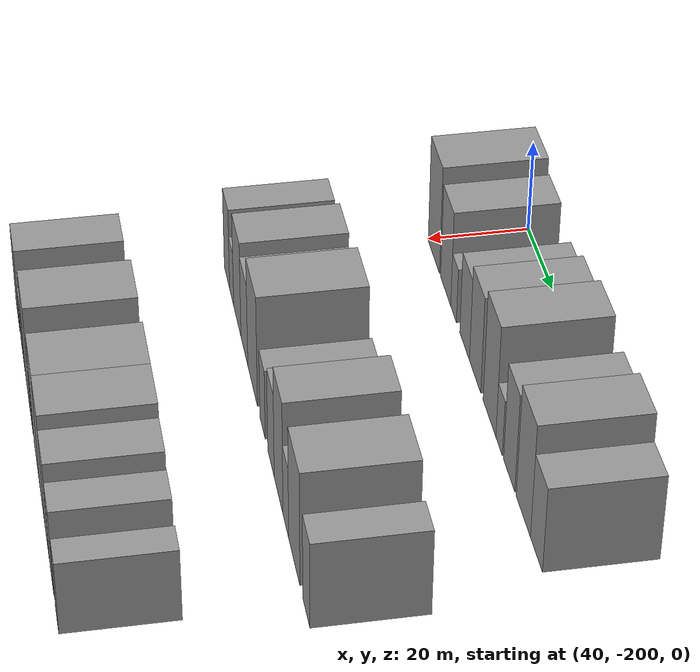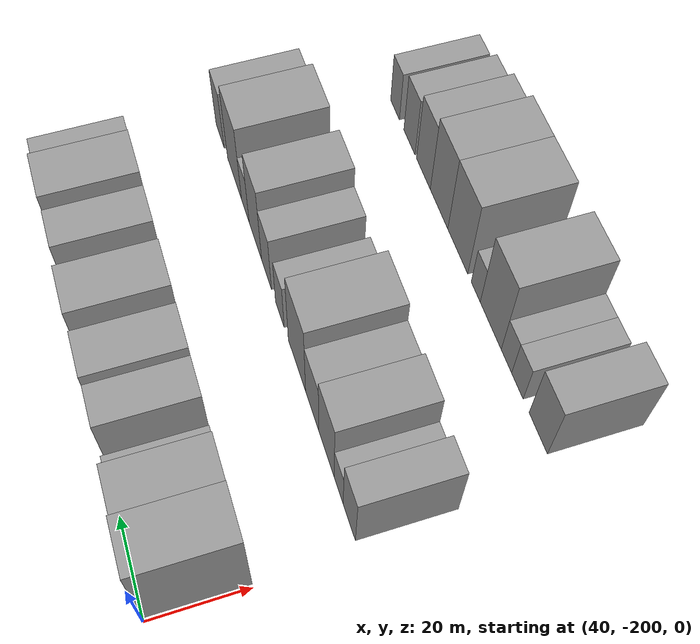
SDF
<sdf version="1.6">
 <world name="default">
  <model name="building_22">
   <static>1</static>
   <pose>50.0000 -193.8606 0 0.000000 0.000000 0.000000</pose>
   <link name="link">
    <pose>0 0 12.00 0 0 0</pose>
    <collision name="collision"><geometry><box><size>20.0000 10.9437 24.0000</size></box></geometry></collision>
    <visual name="visual">
     <cast_shadows>0</cast_shadows>
     <geometry><box><size>20.0000 10.9437 24.0000</size></box></geometry>
     <material>
      <script>
       <uri>model://grey_wall/materials/scripts</uri>
       <uri>model://grey_wall/materials/textures</uri>
       <name>vrc/grey_wall</name>
      </script>
     </material>
    </visual>
   </link>
  </model>
  <model name="building_23">
   <static>1</static>
   <pose>50.0000 -182.6399 0 0.000000 0.000000 0.000000</pose>
   <link name="link">
    <pose>0 0 10.50 0 0 0</pose>
    <collision name="collision"><geometry><box><size>20.0000 9.4976 21.0000</size></box></geometry></collision>
    <visual name="visual">
     <cast_shadows>0</cast_shadows>
     <geometry><box><size>20.0000 9.4976 21.0000</size></box></geometry>
     <material>
      <script>
       <uri>model://grey_wall/materials/scripts</uri>
       <uri>model://grey_wall/materials/textures</uri>
       <name>vrc/grey_wall</name>
      </script>
     </material>
    </visual>
   </link>
  </model>
  <model name="building_24">
   <static>1</static>
   <pose>50.0000 -175.2718 0 0.000000 0.000000 0.000000</pose>
   <link name="link">
    <pose>0 0 6.00 0 0 0</pose>
    <collision name="collision"><geometry><box><size>20.0000 5.2387 12.0000</size></box></geometry></collision>
    <visual name="visual">
     <cast_shadows>0</cast_shadows>
     <geometry><box><size>20.0000 5.2387 12.0000</size></box></geometry>
     <material>
      <script>
       <uri>model://grey_wall/materials/scripts</uri>
       <uri>model://grey_wall/materials/textures</uri>
       <name>vrc/grey_wall</name>
      </script>
     </material>
    </visual>
   </link>
  </model>
  <model name="building_25">
   <static>1</static>
   <pose>50.0000 -165.3610 0 0.000000 0.000000 0.000000</pose>
   <link name="link">
    <pose>0 0 9.00 0 0 0</pose>
    <collision name="collision"><geometry><box><size>20.0000 8.5828 18.0000</size></box></geometry></collision>
    <visual name="visual">
     <cast_shadows>0</cast_shadows>
     <geometry><box><size>20.0000 8.5828 18.0000</size></box></geometry>
     <material>
      <script>
       <uri>model://grey_wall/materials/scripts</uri>
       <uri>model://grey_wall/materials/textures</uri>
       <name>vrc/grey_wall</name>
      </script>
     </material>
    </visual>
   </link>
  </model>
  <model name="building_26">
   <static>1</static>
   <pose>50.0000 -156.2007 0 0.000000 0.000000 0.000000</pose>
   <link name="link">
    <pose>0 0 10.50 0 0 0</pose>
    <collision name="collision"><geometry><box><size>20.0000 9.7379 21.0000</size></box></geometry></collision>
    <visual name="visual">
     <cast_shadows>0</cast_shadows>
     <geometry><box><size>20.0000 9.7379 21.0000</size></box></geometry>
     <material>
      <script>
       <uri>model://grey_wall/materials/scripts</uri>
       <uri>model://grey_wall/materials/textures</uri>
       <name>vrc/grey_wall</name>
      </script>
     </material>
    </visual>
   </link>
  </model>
  <model name="building_27">
   <static>1</static>
   <pose>50.0000 -144.0511 0 0.000000 0.000000 0.000000</pose>
   <link name="link">
    <pose>0 0 12.00 0 0 0</pose>
    <collision name="collision"><geometry><box><size>20.0000 10.5612 24.0000</size></box></geometry></collision>
    <visual name="visual">
     <cast_shadows>0</cast_shadows>
     <geometry><box><size>20.0000 10.5612 24.0000</size></box></geometry>
     <material>
      <script>
       <uri>model://grey_wall/materials/scripts</uri>
       <uri>model://grey_wall/materials/textures</uri>
       <name>vrc/grey_wall</name>
      </script>
     </material>
    </visual>
   </link>
  </model>
  <model name="building_28">
   <static>1</static>
   <pose>50.0000 -136.1599 0 0.000000 0.000000 0.000000</pose>
   <link name="link">
    <pose>0 0 6.00 0 0 0</pose>
    <collision name="collision"><geometry><box><size>20.0000 5.2212 12.0000</size></box></geometry></collision>
    <visual name="visual">
     <cast_shadows>0</cast_shadows>
     <geometry><box><size>20.0000 5.2212 12.0000</size></box></geometry>
     <material>
      <script>
       <uri>model://grey_wall/materials/scripts</uri>
       <uri>model://grey_wall/materials/textures</uri>
       <name>vrc/grey_wall</name>
      </script>
     </material>
    </visual>
   </link>
  </model>
  <model name="building_29">
   <static>1</static>
   <pose>50.0000 -128.1237 0 0.000000 0.000000 0.000000</pose>
   <link name="link">
    <pose>0 0 10.50 0 0 0</pose>
    <collision name="collision"><geometry><box><size>20.0000 8.8513 21.0000</size></box></geometry></collision>
    <visual name="visual">
     <cast_shadows>0</cast_shadows>
     <geometry><box><size>20.0000 8.8513 21.0000</size></box></geometry>
     <material>
      <script>
       <uri>model://grey_wall/materials/scripts</uri>
       <uri>model://grey_wall/materials/textures</uri>
       <name>vrc/grey_wall</name>
      </script>
     </material>
    </visual>
   </link>
  </model>
  <model name="building_30">
   <static>1</static>
   <pose>50.0000 -117.2829 0 0.000000 0.000000 0.000000</pose>
   <link name="link">
    <pose>0 0 12.00 0 0 0</pose>
    <collision name="collision"><geometry><box><size>20.0000 10.8303 24.0000</size></box></geometry></collision>
    <visual name="visual">
     <cast_shadows>0</cast_shadows>
     <geometry><box><size>20.0000 10.8303 24.0000</size></box></geometry>
     <material>
      <script>
       <uri>model://grey_wall/materials/scripts</uri>
       <uri>model://grey_wall/materials/textures</uri>
       <name>vrc/grey_wall</name>
      </script>
     </material>
    </visual>
   </link>
  </model>
  <model name="building_31">
   <static>1</static>
   <pose>50.0000 -107.4530 0 0.000000 0.000000 0.000000</pose>
   <link name="link">
    <pose>0 0 9.00 0 0 0</pose>
    <collision name="collision"><geometry><box><size>20.0000 8.8295 18.0000</size></box></geometry></collision>
    <visual name="visual">
     <cast_shadows>0</cast_shadows>
     <geometry><box><size>20.0000 8.8295 18.0000</size></box></geometry>
     <material>
      <script>
       <uri>model://grey_wall/materials/scripts</uri>
       <uri>model://grey_wall/materials/textures</uri>
       <name>vrc/grey_wall</name>
      </script>
     </material>
    </visual>
   </link>
  </model>
  <model name="building_104">
   <static>1</static>
   <pose>90.0000 -193.6263 0 0.000000 0.000000 0.000000</pose>
   <link name="link">
    <pose>0 0 9.00 0 0 0</pose>
    <collision name="collision"><geometry><box><size>20.0000 7.3427 18.0000</size></box></geometry></collision>
    <visual name="visual">
     <cast_shadows>0</cast_shadows>
     <geometry><box><size>20.0000 7.3427 18.0000</size></box></geometry>
     <material>
      <script>
       <uri>model://grey_wall/materials/scripts</uri>
       <uri>model://grey_wall/materials/textures</uri>
       <name>vrc/grey_wall</name>
      </script>
     </material>
    </visual>
   </link>
  </model>
  <model name="building_105">
   <static>1</static>
   <pose>90.0000 -187.2141 0 0.000000 0.000000 0.000000</pose>
   <link name="link">
    <pose>0 0 6.00 0 0 0</pose>
    <collision name="collision"><geometry><box><size>20.0000 5.4816 12.0000</size></box></geometry></collision>
    <visual name="visual">
     <cast_shadows>0</cast_shadows>
     <geometry><box><size>20.0000 5.4816 12.0000</size></box></geometry>
     <material>
      <script>
       <uri>model://grey_wall/materials/scripts</uri>
       <uri>model://grey_wall/materials/textures</uri>
       <name>vrc/grey_wall</name>
      </script>
     </material>
    </visual>
   </link>
  </model>
  <model name="building_106">
   <static>1</static>
   <pose>90.0000 -179.6539 0 0.000000 0.000000 0.000000</pose>
   <link name="link">
    <pose>0 0 10.50 0 0 0</pose>
    <collision name="collision"><geometry><box><size>20.0000 9.6388 21.0000</size></box></geometry></collision>
    <visual name="visual">
     <cast_shadows>0</cast_shadows>
     <geometry><box><size>20.0000 9.6388 21.0000</size></box></geometry>
     <material>
      <script>
       <uri>model://grey_wall/materials/scripts</uri>
       <uri>model://grey_wall/materials/textures</uri>
       <name>vrc/grey_wall</name>
      </script>
     </material>
    </visual>
   </link>
  </model>
  <model name="building_107">
   <static>1</static>
   <pose>90.0000 -170.4304 0 0.000000 0.000000 0.000000</pose>
   <link name="link">
    <pose>0 0 9.00 0 0 0</pose>
    <collision name="collision"><geometry><box><size>20.0000 8.8081 18.0000</size></box></geometry></collision>
    <visual name="visual">
     <cast_shadows>0</cast_shadows>
     <geometry><box><size>20.0000 8.8081 18.0000</size></box></geometry>
     <material>
      <script>
       <uri>model://grey_wall/materials/scripts</uri>
       <uri>model://grey_wall/materials/textures</uri>
       <name>vrc/grey_wall</name>
      </script>
     </material>
    </visual>
   </link>
  </model>
  <model name="building_108">
   <static>1</static>
   <pose>90.0000 -160.0560 0 0.000000 0.000000 0.000000</pose>
   <link name="link">
    <pose>0 0 12.00 0 0 0</pose>
    <collision name="collision"><geometry><box><size>20.0000 11.9408 24.0000</size></box></geometry></collision>
    <visual name="visual">
     <cast_shadows>0</cast_shadows>
     <geometry><box><size>20.0000 11.9408 24.0000</size></box></geometry>
     <material>
      <script>
       <uri>model://grey_wall/materials/scripts</uri>
       <uri>model://grey_wall/materials/textures</uri>
       <name>vrc/grey_wall</name>
      </script>
     </material>
    </visual>
   </link>
  </model>
  <model name="building_109">
   <static>1</static>
   <pose>90.0000 -147.9394 0 0.000000 0.000000 0.000000</pose>
   <link name="link">
    <pose>0 0 7.50 0 0 0</pose>
    <collision name="collision"><geometry><box><size>20.0000 6.2924 15.0000</size></box></geometry></collision>
    <visual name="visual">
     <cast_shadows>0</cast_shadows>
     <geometry><box><size>20.0000 6.2924 15.0000</size></box></geometry>
     <material>
      <script>
       <uri>model://grey_wall/materials/scripts</uri>
       <uri>model://grey_wall/materials/textures</uri>
       <name>vrc/grey_wall</name>
      </script>
     </material>
    </visual>
   </link>
  </model>
  <model name="building_110">
   <static>1</static>
   <pose>90.0000 -138.0531 0 0.000000 0.000000 0.000000</pose>
   <link name="link">
    <pose>0 0 9.00 0 0 0</pose>
    <collision name="collision"><geometry><box><size>20.0000 7.4801 18.0000</size></box></geometry></collision>
    <visual name="visual">
     <cast_shadows>0</cast_shadows>
     <geometry><box><size>20.0000 7.4801 18.0000</size></box></geometry>
     <material>
      <script>
       <uri>model://grey_wall/materials/scripts</uri>
       <uri>model://grey_wall/materials/textures</uri>
       <name>vrc/grey_wall</name>
      </script>
     </material>
    </visual>
   </link>
  </model>
  <model name="building_111">
   <static>1</static>
   <pose>90.0000 -129.3967 0 0.000000 0.000000 0.000000</pose>
   <link name="link">
    <pose>0 0 12.00 0 0 0</pose>
    <collision name="collision"><geometry><box><size>20.0000 9.8327 24.0000</size></box></geometry></collision>
    <visual name="visual">
     <cast_shadows>0</cast_shadows>
     <geometry><box><size>20.0000 9.8327 24.0000</size></box></geometry>
     <material>
      <script>
       <uri>model://grey_wall/materials/scripts</uri>
       <uri>model://grey_wall/materials/textures</uri>
       <name>vrc/grey_wall</name>
      </script>
     </material>
    </visual>
   </link>
  </model>
  <model name="building_112">
   <static>1</static>
   <pose>90.0000 -121.3821 0 0.000000 0.000000 0.000000</pose>
   <link name="link">
    <pose>0 0 7.50 0 0 0</pose>
    <collision name="collision"><geometry><box><size>20.0000 6.1965 15.0000</size></box></geometry></collision>
    <visual name="visual">
     <cast_shadows>0</cast_shadows>
     <geometry><box><size>20.0000 6.1965 15.0000</size></box></geometry>
     <material>
      <script>
       <uri>model://grey_wall/materials/scripts</uri>
       <uri>model://grey_wall/materials/textures</uri>
       <name>vrc/grey_wall</name>
      </script>
     </material>
    </visual>
   </link>
  </model>
  <model name="building_113">
   <static>1</static>
   <pose>90.0000 -112.3388 0 0.000000 0.000000 0.000000</pose>
   <link name="link">
    <pose>0 0 12.00 0 0 0</pose>
    <collision name="collision"><geometry><box><size>20.0000 11.8901 24.0000</size></box></geometry></collision>
    <visual name="visual">
     <cast_shadows>0</cast_shadows>
     <geometry><box><size>20.0000 11.8901 24.0000</size></box></geometry>
     <material>
      <script>
       <uri>model://grey_wall/materials/scripts</uri>
       <uri>model://grey_wall/materials/textures</uri>
       <name>vrc/grey_wall</name>
      </script>
     </material>
    </visual>
   </link>
  </model>
  <model name="building_114">
   <static>1</static>
   <pose>90.0000 -99.7647 0 0.000000 0.000000 0.000000</pose>
   <link name="link">
    <pose>0 0 9.00 0 0 0</pose>
    <collision name="collision"><geometry><box><size>20.0000 7.2581 18.0000</size></box></geometry></collision>
    <visual name="visual">
     <cast_shadows>0</cast_shadows>
     <geometry><box><size>20.0000 7.2581 18.0000</size></box></geometry>
     <material>
      <script>
       <uri>model://grey_wall/materials/scripts</uri>
       <uri>model://grey_wall/materials/textures</uri>
       <name>vrc/grey_wall</name>
      </script>
     </material>
    </visual>
   </link>
  </model>
  <model name="building_191">
   <static>1</static>
   <pose>130.0000 -187.7436 0 0.000000 0.000000 0.000000</pose>
   <link name="link">
    <pose>0 0 9.00 0 0 0</pose>
    <collision name="collision"><geometry><box><size>20.0000 8.9436 18.0000</size></box></geometry></collision>
    <visual name="visual">
     <cast_shadows>0</cast_shadows>
     <geometry><box><size>20.0000 8.9436 18.0000</size></box></geometry>
     <material>
      <script>
       <uri>model://grey_wall/materials/scripts</uri>
       <uri>model://grey_wall/materials/textures</uri>
       <name>vrc/grey_wall</name>
      </script>
     </material>
    </visual>
   </link>
  </model>
  <model name="building_192">
   <static>1</static>
   <pose>130.0000 -177.3389 0 0.000000 0.000000 0.000000</pose>
   <link name="link">
    <pose>0 0 6.00 0 0 0</pose>
    <collision name="collision"><geometry><box><size>20.0000 5.8659 12.0000</size></box></geometry></collision>
    <visual name="visual">
     <cast_shadows>0</cast_shadows>
     <geometry><box><size>20.0000 5.8659 12.0000</size></box></geometry>
     <material>
      <script>
       <uri>model://grey_wall/materials/scripts</uri>
       <uri>model://grey_wall/materials/textures</uri>
       <name>vrc/grey_wall</name>
      </script>
     </material>
    </visual>
   </link>
  </model>
  <model name="building_193">
   <static>1</static>
   <pose>130.0000 -171.6527 0 0.000000 0.000000 0.000000</pose>
   <link name="link">
    <pose>0 0 6.00 0 0 0</pose>
    <collision name="collision"><geometry><box><size>20.0000 5.5064 12.0000</size></box></geometry></collision>
    <visual name="visual">
     <cast_shadows>0</cast_shadows>
     <geometry><box><size>20.0000 5.5064 12.0000</size></box></geometry>
     <material>
      <script>
       <uri>model://grey_wall/materials/scripts</uri>
       <uri>model://grey_wall/materials/textures</uri>
       <name>vrc/grey_wall</name>
      </script>
     </material>
    </visual>
   </link>
  </model>
  <model name="building_194">
   <static>1</static>
   <pose>130.0000 -163.1820 0 0.000000 0.000000 0.000000</pose>
   <link name="link">
    <pose>0 0 12.00 0 0 0</pose>
    <collision name="collision"><geometry><box><size>20.0000 11.4350 24.0000</size></box></geometry></collision>
    <visual name="visual">
     <cast_shadows>0</cast_shadows>
     <geometry><box><size>20.0000 11.4350 24.0000</size></box></geometry>
     <material>
      <script>
       <uri>model://grey_wall/materials/scripts</uri>
       <uri>model://grey_wall/materials/textures</uri>
       <name>vrc/grey_wall</name>
      </script>
     </material>
    </visual>
   </link>
  </model>
  <model name="building_195">
   <static>1</static>
   <pose>130.0000 -154.9226 0 0.000000 0.000000 0.000000</pose>
   <link name="link">
    <pose>0 0 6.00 0 0 0</pose>
    <collision name="collision"><geometry><box><size>20.0000 5.0838 12.0000</size></box></geometry></collision>
    <visual name="visual">
     <cast_shadows>0</cast_shadows>
     <geometry><box><size>20.0000 5.0838 12.0000</size></box></geometry>
     <material>
      <script>
       <uri>model://grey_wall/materials/scripts</uri>
       <uri>model://grey_wall/materials/textures</uri>
       <name>vrc/grey_wall</name>
      </script>
     </material>
    </visual>
   </link>
  </model>
  <model name="building_196">
   <static>1</static>
   <pose>130.0000 -144.4950 0 0.000000 0.000000 0.000000</pose>
   <link name="link">
    <pose>0 0 12.00 0 0 0</pose>
    <collision name="collision"><geometry><box><size>20.0000 11.7713 24.0000</size></box></geometry></collision>
    <visual name="visual">
     <cast_shadows>0</cast_shadows>
     <geometry><box><size>20.0000 11.7713 24.0000</size></box></geometry>
     <material>
      <script>
       <uri>model://grey_wall/materials/scripts</uri>
       <uri>model://grey_wall/materials/textures</uri>
       <name>vrc/grey_wall</name>
      </script>
     </material>
    </visual>
   </link>
  </model>
  <model name="building_197">
   <static>1</static>
   <pose>130.0000 -133.1901 0 0.000000 0.000000 0.000000</pose>
   <link name="link">
    <pose>0 0 12.00 0 0 0</pose>
    <collision name="collision"><geometry><box><size>20.0000 10.8387 24.0000</size></box></geometry></collision>
    <visual name="visual">
     <cast_shadows>0</cast_shadows>
     <geometry><box><size>20.0000 10.8387 24.0000</size></box></geometry>
     <material>
      <script>
       <uri>model://grey_wall/materials/scripts</uri>
       <uri>model://grey_wall/materials/textures</uri>
       <name>vrc/grey_wall</name>
      </script>
     </material>
    </visual>
   </link>
  </model>
  <model name="building_198">
   <static>1</static>
   <pose>130.0000 -123.3362 0 0.000000 0.000000 0.000000</pose>
   <link name="link">
    <pose>0 0 10.50 0 0 0</pose>
    <collision name="collision"><geometry><box><size>20.0000 8.8690 21.0000</size></box></geometry></collision>
    <visual name="visual">
     <cast_shadows>0</cast_shadows>
     <geometry><box><size>20.0000 8.8690 21.0000</size></box></geometry>
     <material>
      <script>
       <uri>model://grey_wall/materials/scripts</uri>
       <uri>model://grey_wall/materials/textures</uri>
       <name>vrc/grey_wall</name>
      </script>
     </material>
    </visual>
   </link>
  </model>
  <model name="building_199">
   <static>1</static>
   <pose>130.0000 -114.1895 0 0.000000 0.000000 0.000000</pose>
   <link name="link">
    <pose>0 0 9.00 0 0 0</pose>
    <collision name="collision"><geometry><box><size>20.0000 7.4245 18.0000</size></box></geometry></collision>
    <visual name="visual">
     <cast_shadows>0</cast_shadows>
     <geometry><box><size>20.0000 7.4245 18.0000</size></box></geometry>
     <material>
      <script>
       <uri>model://grey_wall/materials/scripts</uri>
       <uri>model://grey_wall/materials/textures</uri>
       <name>vrc/grey_wall</name>
      </script>
     </material>
    </visual>
   </link>
  </model>
  <model name="building_200">
   <static>1</static>
   <pose>130.0000 -104.4455 0 0.000000 0.000000 0.000000</pose>
   <link name="link">
    <pose>0 0 7.50 0 0 0</pose>
    <collision name="collision"><geometry><box><size>20.0000 6.0635 15.0000</size></box></geometry></collision>
    <visual name="visual">
     <cast_shadows>0</cast_shadows>
     <geometry><box><size>20.0000 6.0635 15.0000</size></box></geometry>
     <material>
      <script>
       <uri>model://grey_wall/materials/scripts</uri>
       <uri>model://grey_wall/materials/textures</uri>
       <name>vrc/grey_wall</name>
      </script>
     </material>
    </visual>
   </link>
  </model>
 </world>
</sdf>
